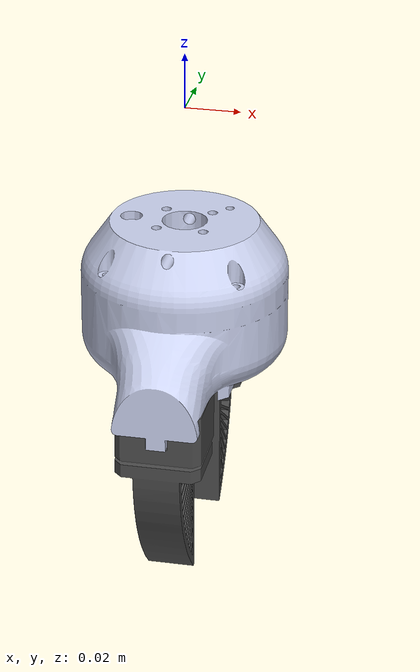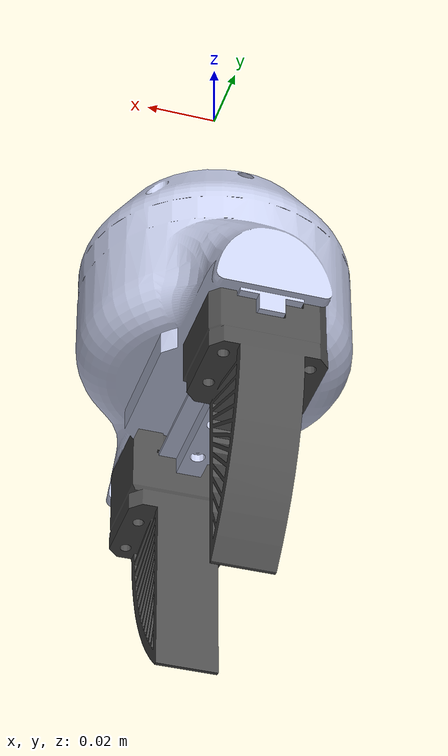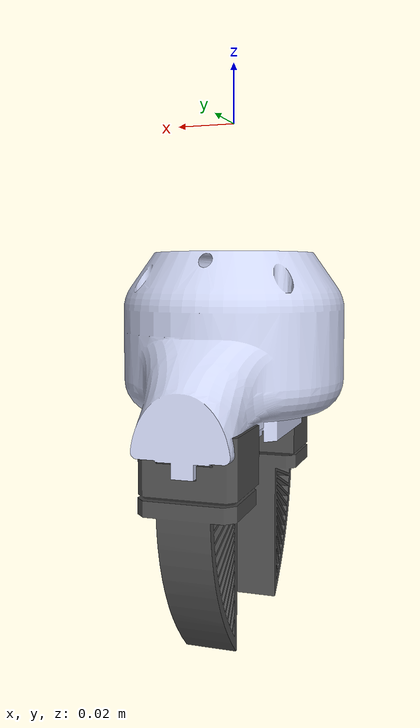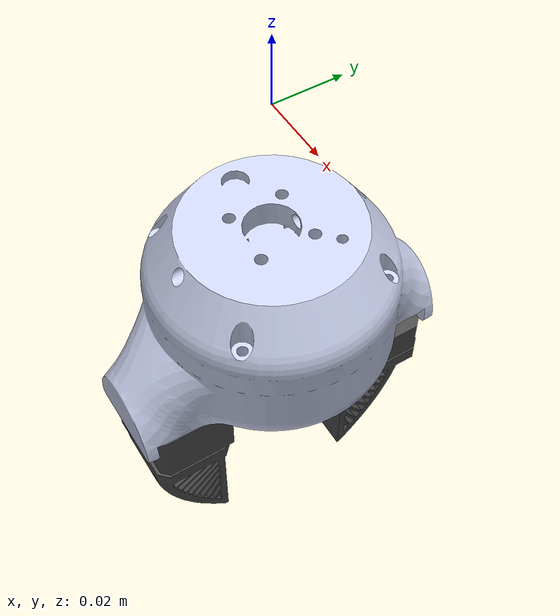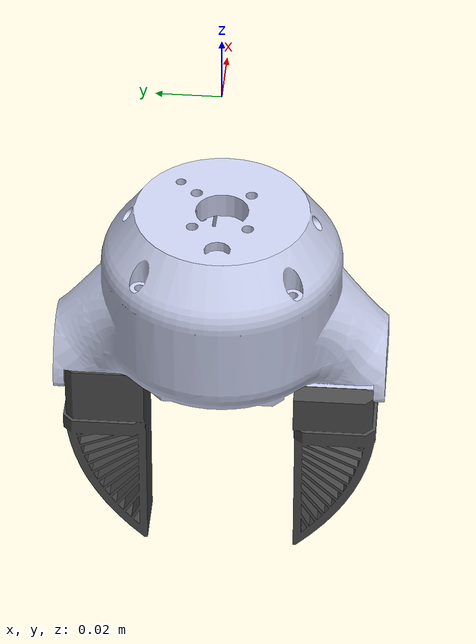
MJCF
<mujoco model="ssg48_gripper">
  <compiler angle="radian" autolimits="true" meshdir="assets"/>

  <option integrator="implicitfast"/>

  <!-- Default -->
  <default>
    <default class="SSG48_gripper">
      <joint armature="0.01" damping="0.2" frictionloss="0"/>
      <position forcerange="-50 50" ctrlrange="-0.0235 0" kp="1000"/>
    </default>
  </default>

  <asset>
    <mesh name="gripper" file="gripper_SSG48.STL" scale="1 1 1"/>
    <mesh name="jaw1" file="jaw1_SSG48.STL" scale="1 1 1"/>
    <mesh name="jaw2" file="jaw2_SSG48.STL" scale="1 1 1"/>
  </asset>

  <worldbody>
    <body name="gripper">
      <inertial pos="-6.7987e-05 0.0001694 -0.077391" quat="0.464161 0.46546 -0.535128 0.530603" mass="0.374" diaginertia="0.00014808 0.000127124 5.86313e-05"/>
      <geom type="mesh" rgba="0.79216 0.81961 0.93333 1" mesh="gripper"/>

      <!-- Camera center -->
      <body name="camera_center" pos="0.0 -0.09 0.1">
        <geom size="0.005 0.005 0.005" pos="0. 0. 0."
            contype="0" conaffinity="0"
            type="box" rgba="1.00 0.00 0.0 0" />
        <camera name="egocentric" pos="0 0 0" xyaxes="-1 0 0 0 0 1" fovy="90" />
      </body>

      <body name="tcp_link" pos="0 -0.22 0">
        <site name="tcp"
              pos="0 0 0"
              size="0.005"
              rgba="1 0 0 0"/>
        <geom type="capsule" fromto="0 0 -0.5 0 0 0.5" size="0.01" rgba="1.0 0.2 0.2 0.0" contype="0" conaffinity="0"/>
      </body>

      <body name="jaw1" pos="0 0 -0.11745" quat="1.34924e-11 3.67321e-06 1 3.67321e-06">
        <inertial pos="0.0033269 0.029197 -0.0097237" quat="0.427918 0.661892 -0.405093 0.463342" mass="0.02" diaginertia="4.64011e-06 3.93984e-06 1.21885e-06"/>
        <joint name="jaw1_JOINT" pos="0 0 0" axis="0 -1 0" type="slide" range="-0.0235 0" class="SSG48_gripper"/>
        <geom type="mesh"
              mesh="jaw1"
              rgba="0.29804 0.29804 0.29804 1"
              friction="1.2 0.3 0.001"
              solref="0.002 1"
              solimp="0.9 0.95 0.001"/>
      </body>

      <body name="jaw2" pos="0 0 -0.11745" quat="1.34924e-11 3.67321e-06 1 3.67321e-06">
        <inertial pos="-0.0033269 -0.029197 -0.0097237" quat="0.405093 0.463342 -0.427918 0.661892" mass="0.02" diaginertia="4.64011e-06 3.93984e-06 1.21885e-06"/>
        <joint name="jaw2_JOINT" pos="0 0 0" axis="0 -1 0" type="slide" range="0 0.0235" class="SSG48_gripper"/>
        <geom type="mesh"
              mesh="jaw2"
              rgba="0.29804 0.29804 0.29804 1"
              friction="1.2 0.3 0.001"
              solref="0.002 1"
              solimp="0.9 0.95 0.001"/>
      </body>

    </body>
  </worldbody>

  <!-- Gripper fingers are parallel -->
  <equality>
    <joint joint1="jaw2_JOINT" joint2="jaw1_JOINT" polycoef="0 -1 0 0 0"/>
  </equality>

  <!-- Define actuators -->
  <actuator>
    <position name="actuator_jaw" joint="jaw1_JOINT" class="SSG48_gripper"/>
  </actuator>

</mujoco>
